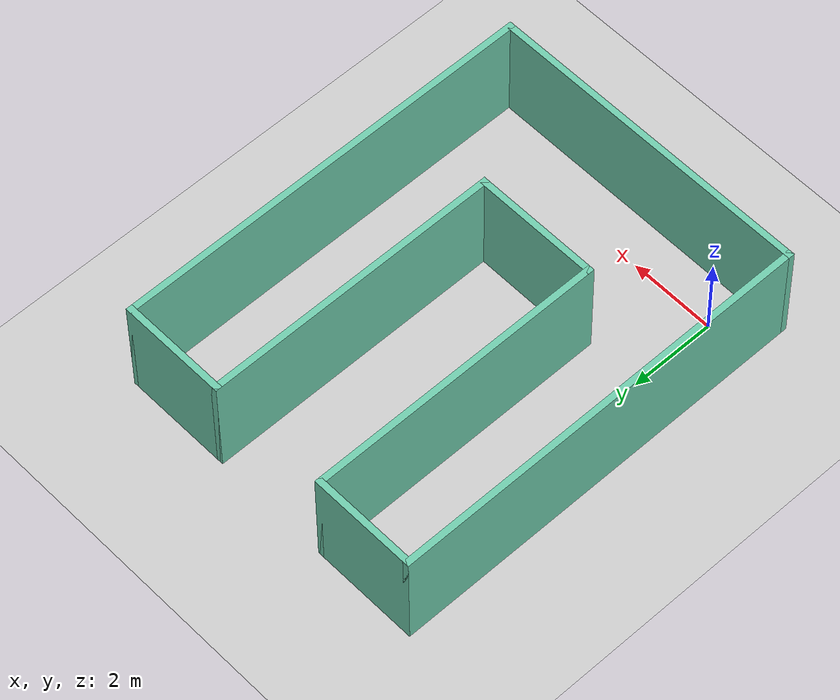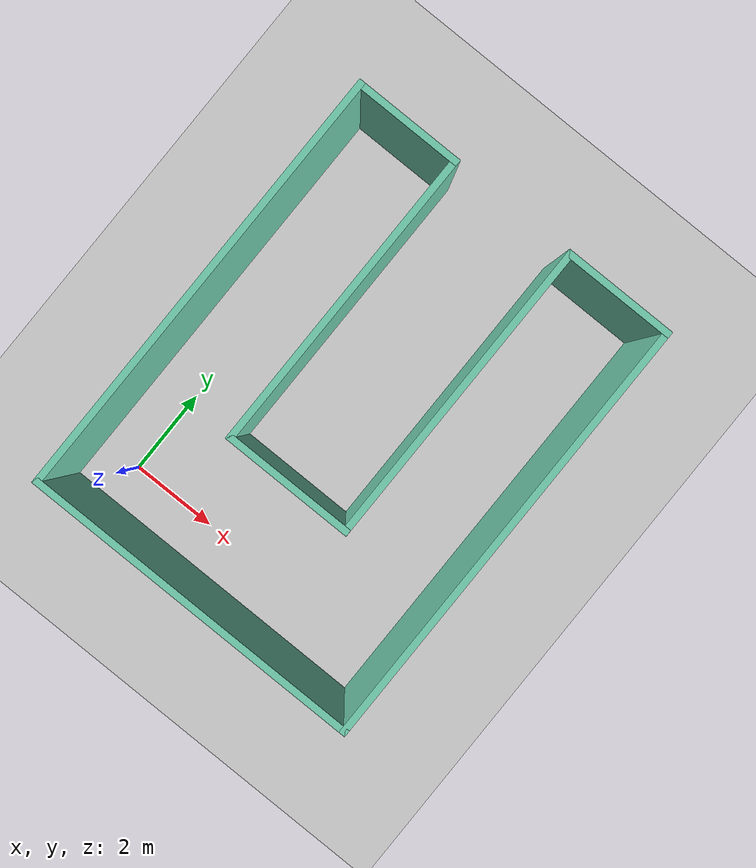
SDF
<sdf version="1.6">
 <world name="default">
  <light name="sun" type="directional">
   <pose>0 0 10 0 -0 0</pose>
   <diffuse>0.8 0.8 0.8 1</diffuse>
   <specular>0.2 0.2 0.2 1</specular>
   <attenuation>
    <range>1000</range>
    <constant>0.9</constant>
    <linear>0.01</linear>
    <quadratic>0.001</quadratic>
   </attenuation>
   <direction>-0.5 0.1 -0.9</direction>
  </light>
  <model name="ground_plane">
   <static>1</static>
   <link name="link">
    <collision name="collision">
     <geometry><plane><normal>0 0 1</normal><size>100 100</size></plane></geometry>
     <surface><friction><ode><mu>100</mu><mu2>50</mu2></ode></friction></surface>
    </collision>
    <visual name="visual">
     <cast_shadows>0</cast_shadows>
     <geometry><plane><normal>0 0 1</normal><size>100 100</size></plane></geometry>
     <material>
      <script><uri>file://media/materials/scripts/gazebo.material</uri><name>Gazebo/Grey</name></script>
     </material>
    </visual>
   </link>
  </model>
  <gravity>0 0 -9.8</gravity>
  <magnetic_field>6e-06 2.3e-05 -4.2e-05</magnetic_field>
  <atmosphere type="adiabatic"/>
  <physics name="default_physics" default="0" type="ode">
   <max_step_size>0.001</max_step_size>
   <real_time_factor>1</real_time_factor>
   <real_time_update_rate>1000</real_time_update_rate>
  </physics>
  <scene><ambient>0.4 0.4 0.4 1</ambient><background>0.7 0.7 0.7 1</background><shadows>1</shadows></scene>
  <spherical_coordinates>
   <surface_model>EARTH_WGS84</surface_model>
   <latitude_deg>0</latitude_deg>
   <longitude_deg>0</longitude_deg>
   <elevation>0</elevation>
   <heading_deg>0</heading_deg>
  </spherical_coordinates>
  <model name="u_world">
   <pose>2.8 3.945 0 0 -0 0</pose>
   <link name="Wall_0">
    <collision name="Wall_0_Collision">
     <geometry><box><size>10 0.15 2.5</size></box></geometry>
     <pose>0 0 1.25 0 -0 0</pose>
    </collision>
    <visual name="Wall_0_Visual">
     <pose>0 0 1.25 0 -0 0</pose>
     <geometry><box><size>10 0.15 2.5</size></box></geometry>
     <material>
      <script><uri>file://media/materials/scripts/gazebo.material</uri><name>Gazebo/Grey</name></script>
      <ambient>0.435294 0.796078 0.67451 1</ambient>
     </material>
     <meta><layer>0</layer></meta>
    </visual>
    <pose>-3.8 0 0 0 -0 1.5708</pose>
   </link>
   <link name="Wall_11">
    <collision name="Wall_11_Collision">
     <geometry><box><size>7.75 0.15 2.5</size></box></geometry>
     <pose>0 0 1.25 0 -0 0</pose>
    </collision>
    <visual name="Wall_11_Visual">
     <pose>0 0 1.25 0 -0 0</pose>
     <geometry><box><size>7.75 0.15 2.5</size></box></geometry>
     <material>
      <script><uri>file://media/materials/scripts/gazebo.material</uri><name>Gazebo/Grey</name></script>
      <ambient>0.435294 0.796078 0.67451 1</ambient>
     </material>
     <meta><layer>0</layer></meta>
    </visual>
    <pose>0 -4.925 0 0 -0 0</pose>
   </link>
   <link name="Wall_12">
    <collision name="Wall_12_Collision">
     <geometry><box><size>10 0.15 2.5</size></box></geometry>
     <pose>0 0 1.25 0 -0 0</pose>
    </collision>
    <visual name="Wall_12_Visual">
     <pose>0 0 1.25 0 -0 0</pose>
     <geometry><box><size>10 0.15 2.5</size></box></geometry>
     <material>
      <script><uri>file://media/materials/scripts/gazebo.material</uri><name>Gazebo/Grey</name></script>
      <ambient>0.435294 0.796078 0.67451 1</ambient>
     </material>
     <meta><layer>0</layer></meta>
    </visual>
    <pose>3.8 0 0 0 -0 1.5708</pose>
   </link>
   <link name="Wall_16">
    <collision name="Wall_16_Collision">
     <geometry><box><size>7 0.15 2.5</size></box></geometry>
     <pose>0 0 1.25 0 -0 0</pose>
    </collision>
    <visual name="Wall_16_Visual">
     <pose>0 0 1.25 0 -0 0</pose>
     <geometry><box><size>7 0.15 2.5</size></box></geometry>
     <material>
      <script><uri>file://media/materials/scripts/gazebo.material</uri><name>Gazebo/Grey</name></script>
      <ambient>0.435294 0.796078 0.67451 1</ambient>
     </material>
     <meta><layer>0</layer></meta>
    </visual>
    <pose>1.4 1.5 0 0 -0 1.5708</pose>
   </link>
   <link name="Wall_17">
    <collision name="Wall_17_Collision">
     <geometry><box><size>2.55 0.15 2.5</size></box></geometry>
     <pose>0 0 1.25 0 -0 0</pose>
    </collision>
    <visual name="Wall_17_Visual">
     <pose>0 0 1.25 0 -0 0</pose>
     <geometry><box><size>2.55 0.15 2.5</size></box></geometry>
     <material>
      <script><uri>file://media/materials/scripts/gazebo.material</uri><name>Gazebo/Grey</name></script>
      <ambient>0.435294 0.796078 0.67451 1</ambient>
     </material>
     <meta><layer>0</layer></meta>
    </visual>
    <pose>2.6 4.925 0 0 -0 0</pose>
   </link>
   <link name="Wall_2">
    <collision name="Wall_2_Collision">
     <geometry><box><size>2.5 0.15 2.5</size></box></geometry>
     <pose>0 0 1.25 0 -0 0</pose>
    </collision>
    <visual name="Wall_2_Visual">
     <pose>0 0 1.25 0 -0 0</pose>
     <geometry><box><size>2.5 0.15 2.5</size></box></geometry>
     <material>
      <script><uri>file://media/materials/scripts/gazebo.material</uri><name>Gazebo/Grey</name></script>
      <ambient>0.435294 0.796078 0.67451 1</ambient>
     </material>
     <meta><layer>0</layer></meta>
    </visual>
    <pose>-2.625 4.925 0 0 -0 0</pose>
   </link>
   <link name="Wall_4">
    <collision name="Wall_4_Collision">
     <geometry><box><size>7 0.15 2.5</size></box></geometry>
     <pose>0 0 1.25 0 -0 0</pose>
    </collision>
    <visual name="Wall_4_Visual">
     <pose>0 0 1.25 0 -0 0</pose>
     <geometry><box><size>7 0.15 2.5</size></box></geometry>
     <material>
      <script><uri>file://media/materials/scripts/gazebo.material</uri><name>Gazebo/Grey</name></script>
      <ambient>0.435294 0.796078 0.67451 1</ambient>
     </material>
     <meta><layer>0</layer></meta>
    </visual>
    <pose>-1.45 1.5 0 0 0 -1.5708</pose>
   </link>
   <link name="Wall_5">
    <collision name="Wall_5_Collision">
     <geometry><box><size>3 0.15 2.5</size></box></geometry>
     <pose>0 0 1.25 0 -0 0</pose>
    </collision>
    <visual name="Wall_5_Visual">
     <pose>0 0 1.25 0 -0 0</pose>
     <geometry><box><size>3 0.15 2.5</size></box></geometry>
     <material>
      <script><uri>file://media/materials/scripts/gazebo.material</uri><name>Gazebo/Grey</name></script>
      <ambient>0.435294 0.796078 0.67451 1</ambient>
     </material>
     <meta><layer>0</layer></meta>
    </visual>
    <pose>-0.025 -1.925 0 0 -0 0</pose>
   </link>
   <static>1</static>
  </model>
 </world>
</sdf>
